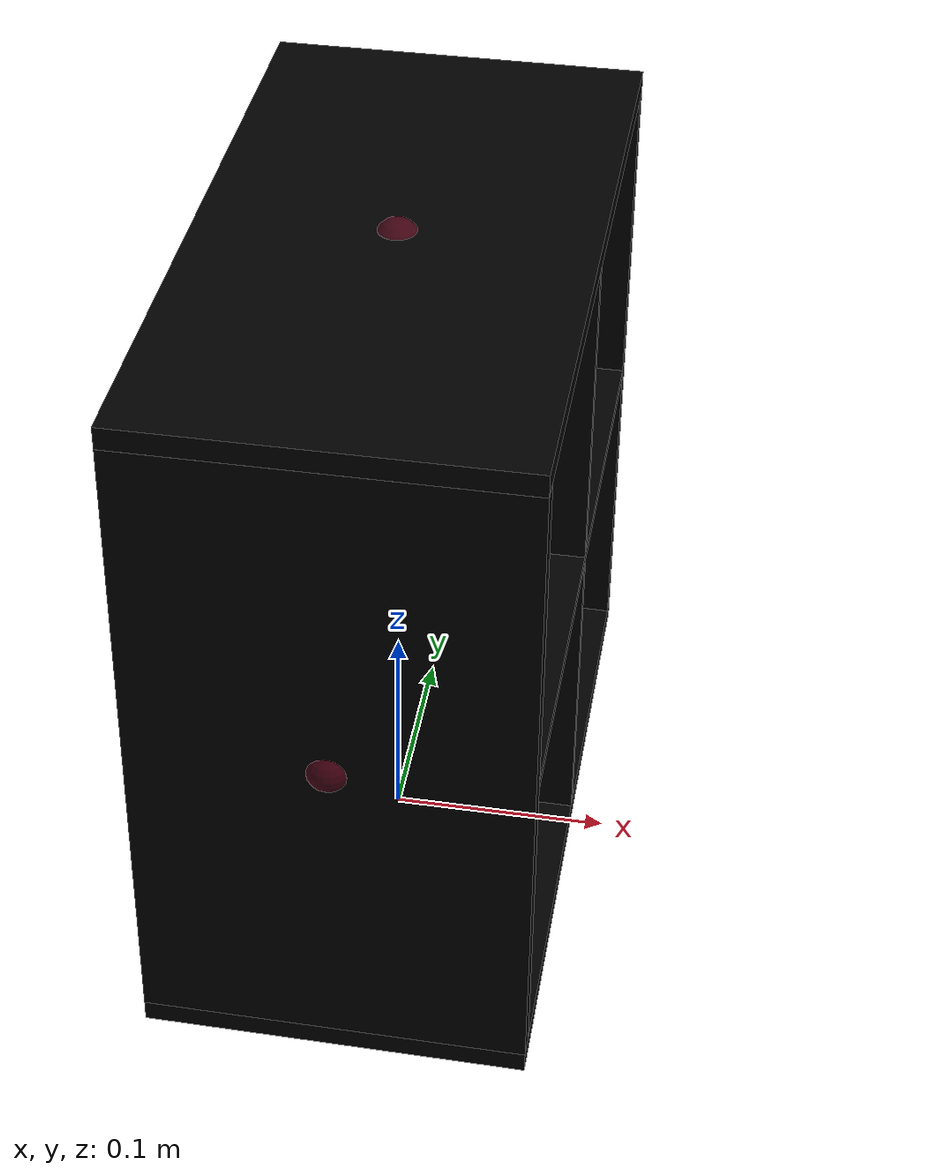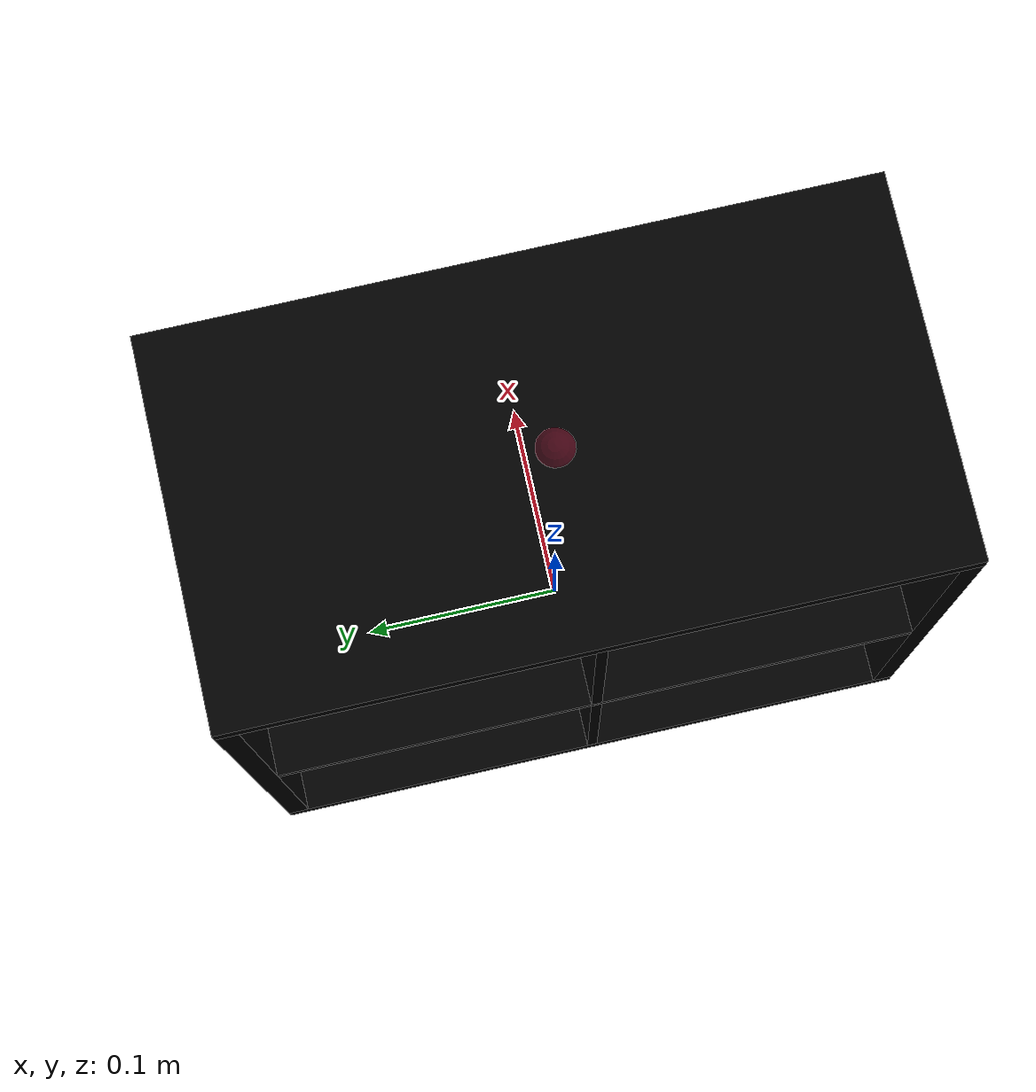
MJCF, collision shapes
<mujoco model="bookcase_expedit_0374">
  <custom>
    <numeric data="0.22421 -0.201384 0.002573 0.707107 -0.707107 0.000151 -0.000151" name="0_part0_initpos" />
    <numeric data="0.214992 0.004814 0.00247 0.707046 0.707046 -0.00929 -0.00929" name="6_part6_initpos" />
    <numeric data="-0.005844 -0.11863 0.00247 0.999429 -0.0 -0.0 0.033777" name="5_part5_initpos" />
    <numeric data="0.220817 0.28772 0.00497 -0.000978 -0.000978 -0.707106 -0.707106" name="4_part4_initpos" />
    <numeric data="-0.252329 0.285712 0.004955 0.707107 -0.707107 -7e-06 7e-06" name="3_part3_initpos" />
    <numeric data="-0.254771 -0.120552 0.004956 -0.0 0.0 -1.0 0.0" name="2_part2_initpos" />
    <numeric data="-0.001746 0.289743 0.00497 0.999611 0.0 -0.0 -0.027883" name="1_part1_initpos" />
  </custom>
  <asset>
    <mesh file="bookcase_expedit_0374/0.stl" name="part0" scale="0.01 0.01 0.01" />
    <mesh file="bookcase_expedit_0374/6.stl" name="part6" scale="0.01 0.01 0.01" />
    <mesh file="bookcase_expedit_0374/5.stl" name="part5" scale="0.01 0.01 0.01" />
    <mesh file="bookcase_expedit_0374/4.stl" name="part4" scale="0.01 0.01 0.01" />
    <mesh file="bookcase_expedit_0374/3.stl" name="part3" scale="0.01 0.01 0.01" />
    <mesh file="bookcase_expedit_0374/2.stl" name="part2" scale="0.01 0.01 0.01" />
    <mesh file="bookcase_expedit_0374/1.stl" name="part1" scale="0.01 0.01 0.01" />
  </asset>
  <worldbody><body name="combined_body" pos="0 0 0.085" quat="1 0 0 0"><geom conaffinity="0" contype="0" density="0" mesh="part0" name="0_part0_mesh" pos="1e-09 -0.0 0.0" rgba="0.82 0.71 0.55 1" type="mesh" quat="1 0 0 0" />
      <geom density="50" name="noviz_collision_0_part0_0" pos="1e-09 -0.0 0.0" quat="1 0 0 0" rgba="0 0 0 0" size="0.085 0.0025 0.07292130000000001" solref="0.001 1" type="box" />
    <site name="0_part0_horizontal_radius_site" pos="1e-09 -0.0 0.0" quat="1 0 0 0" rgba="0 0 0 0" size="0.01" />
      <site name="0_part0_top_site" pos="1e-09 -0.0 0.0" quat="1 0 0 0" rgba="0 0 0 0" size="0.01" />
      <site name="0_part0_bottom_site" pos="1e-09 -0.0 0.0" quat="1 0 0 0" rgba="0 0 0 0" size="0.01" />
      <site name="0_part0_corner_site8" pos="1e-09 -0.0 0.0" quat="1 0 0 0" rgba="0 0 0 0" size="0.01" />
      <site name="0_part0_corner_site7" pos="1e-09 -0.0 0.0" quat="1 0 0 0" rgba="0 0 0 0" size="0.01" />
      <site name="0_part0_corner_site6" pos="1e-09 -0.0 0.0" quat="1 0 0 0" rgba="0 0 0 0" size="0.01" />
      <site name="0_part0_corner_site5" pos="1e-09 -0.0 0.0" quat="1 0 0 0" rgba="0 0 0 0" size="0.01" />
      <site name="0_part0_corner_site4" pos="1e-09 -0.0 0.0" quat="1 0 0 0" rgba="0 0 0 0" size="0.01" />
      <site name="0_part0_corner_site3" pos="1e-09 -0.0 0.0" quat="1 0 0 0" rgba="0 0 0 0" size="0.01" />
      <site name="0_part0_corner_site2" pos="1e-09 -0.0 0.0" quat="1 0 0 0" rgba="0 0 0 0" size="0.01" />
      <site name="0_part0_corner_site1" pos="1e-09 -0.0 0.0" quat="1 0 0 0" rgba="0 0 0 0" size="0.01" />
      <site name="sidepanel-mainpanel,0,180,conn_site1" pos="1e-09 -0.0 0.0" quat="1 0 0 0" rgba="0.9019 0.0980 0.2941 0.3" size="0.01" />
      <site name="centsupport-centpanel,0,180,conn_site1" pos="1e-09 -0.0 0.0" quat="1 0 0 0" rgba="0.2352 0.7058 0.2941 0.3" size="0.01" />
      <geom conaffinity="0" contype="0" density="0" mesh="part6" name="6_part6_mesh" pos="1e-09 -0.0 0.1525" rgba="0.82 0.71 0.55 1" type="mesh" quat="1 0 0 0" />
      <geom density="50" name="noviz_collision_6_part6_0" pos="1e-09 -0.0 0.1525" quat="1 0 0 0" rgba="0 0 0 0" size="0.085 0.0025 0.0745787" solref="0.001 1" type="box" />
    <site name="6_part6_horizontal_radius_site" pos="1e-09 -0.0 0.1525" quat="1 0 0 0" rgba="0 0 0 0" size="0.01" />
      <site name="6_part6_top_site" pos="1e-09 -0.0 0.1525" quat="1 0 0 0" rgba="0 0 0 0" size="0.01" />
      <site name="6_part6_bottom_site" pos="1e-09 -0.0 0.1525" quat="1 0 0 0" rgba="0 0 0 0" size="0.01" />
      <site name="6_part6_corner_site8" pos="1e-09 -0.0 0.1525" quat="1 0 0 0" rgba="0 0 0 0" size="0.01" />
      <site name="6_part6_corner_site7" pos="1e-09 -0.0 0.1525" quat="1 0 0 0" rgba="0 0 0 0" size="0.01" />
      <site name="6_part6_corner_site6" pos="1e-09 -0.0 0.1525" quat="1 0 0 0" rgba="0 0 0 0" size="0.01" />
      <site name="6_part6_corner_site5" pos="1e-09 -0.0 0.1525" quat="1 0 0 0" rgba="0 0 0 0" size="0.01" />
      <site name="6_part6_corner_site4" pos="1e-09 -0.0 0.1525" quat="1 0 0 0" rgba="0 0 0 0" size="0.01" />
      <site name="6_part6_corner_site3" pos="1e-09 -0.0 0.1525" quat="1 0 0 0" rgba="0 0 0 0" size="0.01" />
      <site name="6_part6_corner_site2" pos="1e-09 -0.0 0.1525" quat="1 0 0 0" rgba="0 0 0 0" size="0.01" />
      <site name="6_part6_corner_site1" pos="1e-09 -0.0 0.1525" quat="1 0 0 0" rgba="0 0 0 0" size="0.01" />
      <site name="centsupport-mainpanel,0,180,conn_site1" pos="1e-09 -0.0 0.1525" quat="1 0 0 0" rgba="1.0 0.8823 0.0980 0.3" size="0.01" />
      <site name="centsupport-centpanel,0,180,conn_site2" pos="1e-09 -0.0 0.1525" quat="1 0 0 0" rgba="0.2352 0.7058 0.2941 0.3" size="0.01" />
      <geom conaffinity="0" contype="0" density="0" mesh="part5" name="5_part5_mesh" pos="1e-09 0.0 0.076249999" rgba="0.82 0.71 0.55 1" type="mesh" quat="1 0 0 0" />
      <geom density="50" name="noviz_collision_5_part5_0" pos="1e-09 0.0 0.076249999" quat="1 0 0 0" rgba="0 0 0 0" size="0.085 0.15 0.0025" solref="0.001 1" type="box" />
    <site name="5_part5_horizontal_radius_site" pos="1e-09 0.0 0.076249999" quat="1 0 0 0" rgba="0 0 0 0" size="0.01" />
      <site name="5_part5_top_site" pos="1e-09 0.0 0.076249999" quat="1 0 0 0" rgba="0 0 0 0" size="0.01" />
      <site name="5_part5_bottom_site" pos="1e-09 0.0 0.076249999" quat="1 0 0 0" rgba="0 0 0 0" size="0.01" />
      <site name="5_part5_corner_site8" pos="1e-09 0.0 0.076249999" quat="1 0 0 0" rgba="0 0 0 0" size="0.01" />
      <site name="5_part5_corner_site7" pos="1e-09 0.0 0.076249999" quat="1 0 0 0" rgba="0 0 0 0" size="0.01" />
      <site name="5_part5_corner_site6" pos="1e-09 0.0 0.076249999" quat="1 0 0 0" rgba="0 0 0 0" size="0.01" />
      <site name="5_part5_corner_site5" pos="1e-09 0.0 0.076249999" quat="1 0 0 0" rgba="0 0 0 0" size="0.01" />
      <site name="5_part5_corner_site4" pos="1e-09 0.0 0.076249999" quat="1 0 0 0" rgba="0 0 0 0" size="0.01" />
      <site name="5_part5_corner_site3" pos="1e-09 0.0 0.076249999" quat="1 0 0 0" rgba="0 0 0 0" size="0.01" />
      <site name="5_part5_corner_site2" pos="1e-09 0.0 0.076249999" quat="1 0 0 0" rgba="0 0 0 0" size="0.01" />
      <site name="5_part5_corner_site1" pos="1e-09 0.0 0.076249999" quat="1 0 0 0" rgba="0 0 0 0" size="0.01" />
      <site name="centpanel-sidepanel,0,180,conn_site2" pos="1e-09 0.0 0.076249999" quat="1 0 0 0" rgba="0.2627 0.3882 0.8470 0.3" size="0.01" />
      <site name="centpanel-sidepanel,0,180,conn_site1" pos="1e-09 0.0 0.076249999" quat="1 0 0 0" rgba="0.2627 0.3882 0.8470 0.3" size="0.01" />
      <site name="centpanel-centsupport,0,180,conn_site2" pos="1e-09 0.0 0.076249999" quat="1 0 0 0" rgba="0.2352 0.7058 0.2941 0.3" size="0.01" />
      <site name="centpanel-centsupport,0,180,conn_site1" pos="1e-09 0.0 0.076249999" quat="1 0 0 0" rgba="0.2352 0.7058 0.2941 0.3" size="0.01" />
      <geom conaffinity="0" contype="0" density="0" mesh="part4" name="4_part4_mesh" pos="1e-09 -0.155000002 0.07625" rgba="0.82 0.71 0.55 1" type="mesh" quat="1 0 0 0" />
      <geom density="50" name="noviz_collision_4_part4_0" pos="1e-09 -0.155000002 0.07625" quat="1 0 0 0" rgba="0 0 0 0" size="0.085 0.005007500000000001 0.15" solref="0.001 1" type="box" />
    <site name="4_part4_horizontal_radius_site" pos="1e-09 -0.155000002 0.07625" quat="1 0 0 0" rgba="0 0 0 0" size="0.01" />
      <site name="4_part4_top_site" pos="1e-09 -0.155000002 0.07625" quat="1 0 0 0" rgba="0 0 0 0" size="0.01" />
      <site name="4_part4_bottom_site" pos="1e-09 -0.155000002 0.07625" quat="1 0 0 0" rgba="0 0 0 0" size="0.01" />
      <site name="4_part4_corner_site8" pos="1e-09 -0.155000002 0.07625" quat="1 0 0 0" rgba="0 0 0 0" size="0.01" />
      <site name="4_part4_corner_site7" pos="1e-09 -0.155000002 0.07625" quat="1 0 0 0" rgba="0 0 0 0" size="0.01" />
      <site name="4_part4_corner_site6" pos="1e-09 -0.155000002 0.07625" quat="1 0 0 0" rgba="0 0 0 0" size="0.01" />
      <site name="4_part4_corner_site5" pos="1e-09 -0.155000002 0.07625" quat="1 0 0 0" rgba="0 0 0 0" size="0.01" />
      <site name="4_part4_corner_site4" pos="1e-09 -0.155000002 0.07625" quat="1 0 0 0" rgba="0 0 0 0" size="0.01" />
      <site name="4_part4_corner_site3" pos="1e-09 -0.155000002 0.07625" quat="1 0 0 0" rgba="0 0 0 0" size="0.01" />
      <site name="4_part4_corner_site2" pos="1e-09 -0.155000002 0.07625" quat="1 0 0 0" rgba="0 0 0 0" size="0.01" />
      <site name="4_part4_corner_site1" pos="1e-09 -0.155000002 0.07625" quat="1 0 0 0" rgba="0 0 0 0" size="0.01" />
      <site name="sidepanel-mainpanel,0,180,conn_site5" pos="1e-09 -0.155000002 0.07625" quat="1 0 0 0" rgba="0.9019 0.0980 0.2941 0.3" size="0.01" />
      <site name="sidepanel-mainpanel,0,180,conn_site3" pos="1e-09 -0.155000002 0.07625" quat="1 0 0 0" rgba="0.9019 0.0980 0.2941 0.3" size="0.01" />
      <site name="sidepanel-centpanel,0,180,conn_site2" pos="1e-09 -0.155000002 0.07625" quat="1 0 0 0" rgba="0.2627 0.3882 0.8470 0.3" size="0.01" />
      <geom conaffinity="0" contype="0" density="0" mesh="part3" name="3_part3_mesh" pos="1e-09 0.155 0.07625" rgba="0.82 0.71 0.55 1" type="mesh" quat="1 0 0 0" />
      <geom density="50" name="noviz_collision_3_part3_0" pos="1e-09 0.155 0.07625" quat="1 0 0 0" rgba="0 0 0 0" size="0.085 0.0049925 0.15" solref="0.001 1" type="box" />
    <site name="3_part3_horizontal_radius_site" pos="1e-09 0.155 0.07625" quat="1 0 0 0" rgba="0 0 0 0" size="0.01" />
      <site name="3_part3_top_site" pos="1e-09 0.155 0.07625" quat="1 0 0 0" rgba="0 0 0 0" size="0.01" />
      <site name="3_part3_bottom_site" pos="1e-09 0.155 0.07625" quat="1 0 0 0" rgba="0 0 0 0" size="0.01" />
      <site name="3_part3_corner_site8" pos="1e-09 0.155 0.07625" quat="1 0 0 0" rgba="0 0 0 0" size="0.01" />
      <site name="3_part3_corner_site7" pos="1e-09 0.155 0.07625" quat="1 0 0 0" rgba="0 0 0 0" size="0.01" />
      <site name="3_part3_corner_site6" pos="1e-09 0.155 0.07625" quat="1 0 0 0" rgba="0 0 0 0" size="0.01" />
      <site name="3_part3_corner_site5" pos="1e-09 0.155 0.07625" quat="1 0 0 0" rgba="0 0 0 0" size="0.01" />
      <site name="3_part3_corner_site4" pos="1e-09 0.155 0.07625" quat="1 0 0 0" rgba="0 0 0 0" size="0.01" />
      <site name="3_part3_corner_site3" pos="1e-09 0.155 0.07625" quat="1 0 0 0" rgba="0 0 0 0" size="0.01" />
      <site name="3_part3_corner_site2" pos="1e-09 0.155 0.07625" quat="1 0 0 0" rgba="0 0 0 0" size="0.01" />
      <site name="3_part3_corner_site1" pos="1e-09 0.155 0.07625" quat="1 0 0 0" rgba="0 0 0 0" size="0.01" />
      <site name="sidepanel-mainpanel,0,180,conn_site4" pos="1e-09 0.155 0.07625" quat="1 0 0 0" rgba="0.9019 0.0980 0.2941 0.3" size="0.01" />
      <site name="sidepanel-mainpanel,0,180,conn_site2" pos="1e-09 0.155 0.07625" quat="1 0 0 0" rgba="0.9019 0.0980 0.2941 0.3" size="0.01" />
      <site name="sidepanel-centpanel,0,180,conn_site1" pos="1e-09 0.155 0.07625" quat="1 0 0 0" rgba="0.2627 0.3882 0.8470 0.3" size="0.01" />
      <geom conaffinity="0" contype="0" density="0" mesh="part2" name="2_part2_mesh" pos="1e-09 -1e-09 0.23125" rgba="0.82 0.71 0.55 1" type="mesh" quat="1 0 0 0" />
      <geom density="50" name="noviz_collision_2_part2_0" pos="1e-09 -1e-09 0.23125" quat="1 0 0 0" rgba="0 0 0 0" size="0.085 0.16 0.0049930999999999994" solref="0.001 1" type="box" />
    <site name="2_part2_horizontal_radius_site" pos="1e-09 -1e-09 0.23125" quat="1 0 0 0" rgba="0 0 0 0" size="0.01" />
      <site name="2_part2_top_site" pos="1e-09 -1e-09 0.23125" quat="1 0 0 0" rgba="0 0 0 0" size="0.01" />
      <site name="2_part2_bottom_site" pos="1e-09 -1e-09 0.23125" quat="1 0 0 0" rgba="0 0 0 0" size="0.01" />
      <site name="2_part2_corner_site8" pos="1e-09 -1e-09 0.23125" quat="1 0 0 0" rgba="0 0 0 0" size="0.01" />
      <site name="2_part2_corner_site7" pos="1e-09 -1e-09 0.23125" quat="1 0 0 0" rgba="0 0 0 0" size="0.01" />
      <site name="2_part2_corner_site6" pos="1e-09 -1e-09 0.23125" quat="1 0 0 0" rgba="0 0 0 0" size="0.01" />
      <site name="2_part2_corner_site5" pos="1e-09 -1e-09 0.23125" quat="1 0 0 0" rgba="0 0 0 0" size="0.01" />
      <site name="2_part2_corner_site4" pos="1e-09 -1e-09 0.23125" quat="1 0 0 0" rgba="0 0 0 0" size="0.01" />
      <site name="2_part2_corner_site3" pos="1e-09 -1e-09 0.23125" quat="1 0 0 0" rgba="0 0 0 0" size="0.01" />
      <site name="2_part2_corner_site2" pos="1e-09 -1e-09 0.23125" quat="1 0 0 0" rgba="0 0 0 0" size="0.01" />
      <site name="2_part2_corner_site1" pos="1e-09 -1e-09 0.23125" quat="1 0 0 0" rgba="0 0 0 0" size="0.01" />
      <site name="mainpanel-sidepanel,0,180,conn_site5" pos="1e-09 -1e-09 0.23125" quat="1 0 0 0" rgba="0.9019 0.0980 0.2941 0.3" size="0.01" />
      <site name="mainpanel-sidepanel,0,180,conn_site4" pos="1e-09 -1e-09 0.23125" quat="1 0 0 0" rgba="0.9019 0.0980 0.2941 0.3" size="0.01" />
      <site name="mainpanel-centsupport,0,180,conn_site1" pos="1e-09 -1e-09 0.23125" quat="1 0 0 0" rgba="1.0 0.8823 0.0980 0.3" size="0.01" />
      <geom conaffinity="0" contype="0" density="0" mesh="part1" name="1_part1_mesh" pos="1e-09 -1e-09 -0.07875" rgba="0.82 0.71 0.55 1" type="mesh" quat="1 0 0 0" />
      <geom density="50" name="noviz_collision_1_part1_0" pos="1e-09 -1e-09 -0.07875" quat="1 0 0 0" rgba="0 0 0 0" size="0.085 0.16 0.0050069" solref="0.001 1" type="box" />
    <site name="1_part1_horizontal_radius_site" pos="1e-09 -1e-09 -0.07875" quat="1 0 0 0" rgba="0 0 0 0" size="0.01" />
      <site name="1_part1_top_site" pos="1e-09 -1e-09 -0.07875" quat="1 0 0 0" rgba="0 0 0 0" size="0.01" />
      <site name="1_part1_bottom_site" pos="1e-09 -1e-09 -0.07875" quat="1 0 0 0" rgba="0 0 0 0" size="0.01" />
      <site name="1_part1_corner_site8" pos="1e-09 -1e-09 -0.07875" quat="1 0 0 0" rgba="0 0 0 0" size="0.01" />
      <site name="1_part1_corner_site7" pos="1e-09 -1e-09 -0.07875" quat="1 0 0 0" rgba="0 0 0 0" size="0.01" />
      <site name="1_part1_corner_site6" pos="1e-09 -1e-09 -0.07875" quat="1 0 0 0" rgba="0 0 0 0" size="0.01" />
      <site name="1_part1_corner_site5" pos="1e-09 -1e-09 -0.07875" quat="1 0 0 0" rgba="0 0 0 0" size="0.01" />
      <site name="1_part1_corner_site4" pos="1e-09 -1e-09 -0.07875" quat="1 0 0 0" rgba="0 0 0 0" size="0.01" />
      <site name="1_part1_corner_site3" pos="1e-09 -1e-09 -0.07875" quat="1 0 0 0" rgba="0 0 0 0" size="0.01" />
      <site name="1_part1_corner_site2" pos="1e-09 -1e-09 -0.07875" quat="1 0 0 0" rgba="0 0 0 0" size="0.01" />
      <site name="1_part1_corner_site1" pos="1e-09 -1e-09 -0.07875" quat="1 0 0 0" rgba="0 0 0 0" size="0.01" />
      <site name="mainpanel-sidepanel,0,180,conn_site3" pos="1e-09 -1e-09 -0.07875" quat="1 0 0 0" rgba="0.9019 0.0980 0.2941 0.3" size="0.01" />
      <site name="mainpanel-sidepanel,0,180,conn_site2" pos="1e-09 -1e-09 -0.07875" quat="1 0 0 0" rgba="0.9019 0.0980 0.2941 0.3" size="0.01" />
      <site name="mainpanel-sidepanel,0,180,conn_site1" pos="1e-09 -1e-09 -0.07875" quat="1 0 0 0" rgba="0.9019 0.0980 0.2941 0.3" size="0.01" />
      </body></worldbody><actuator />
  <sensor />
  <contact />
  <default />
</mujoco>
